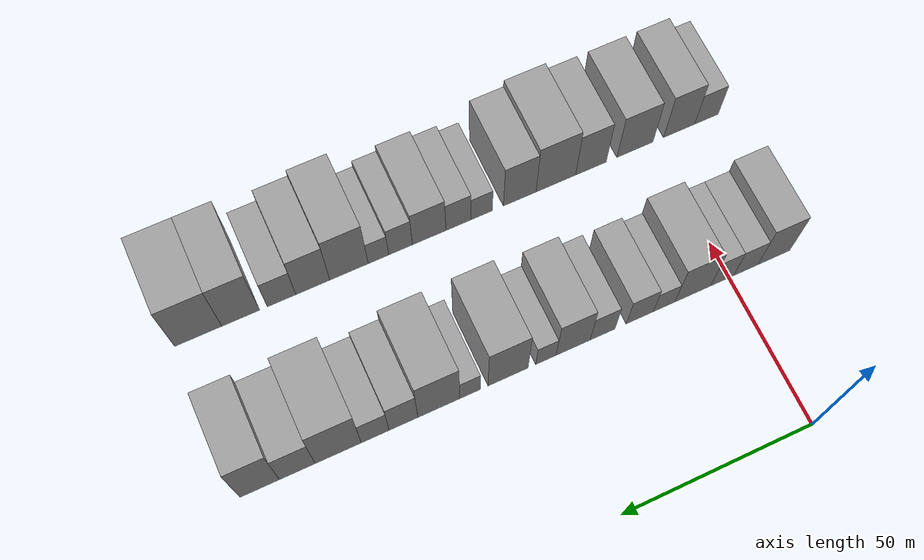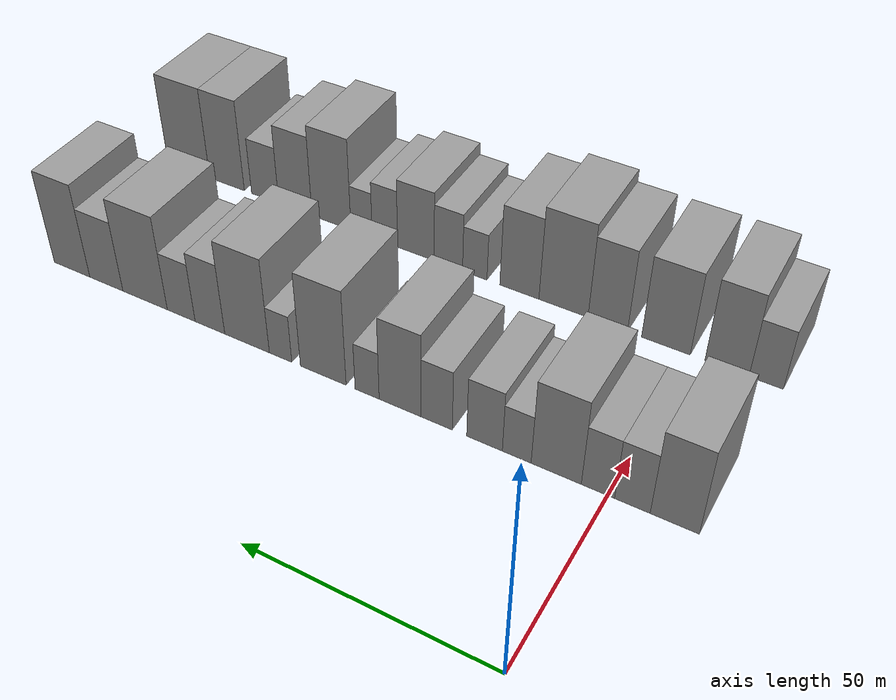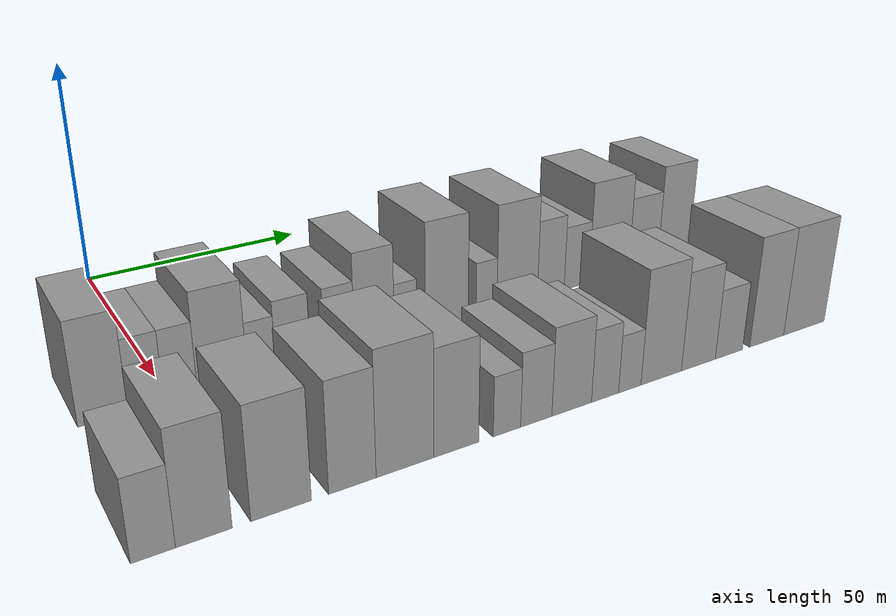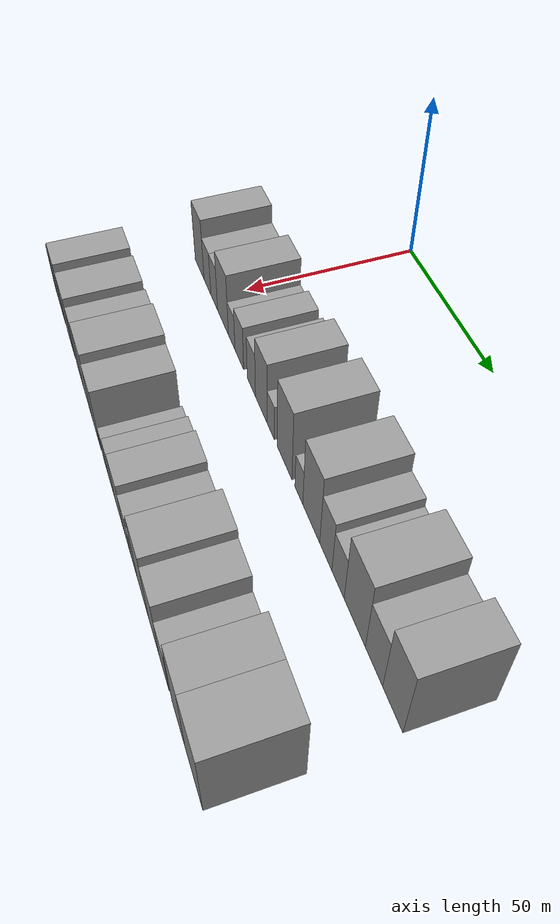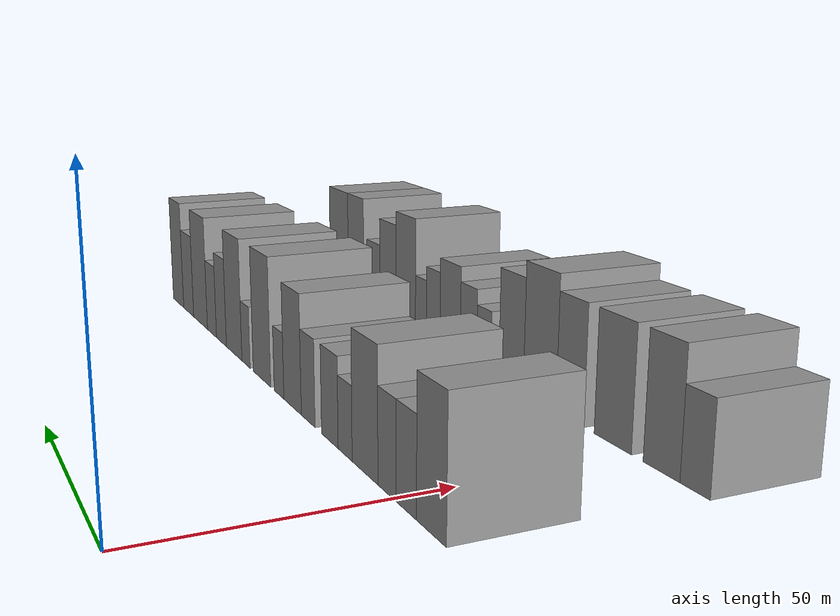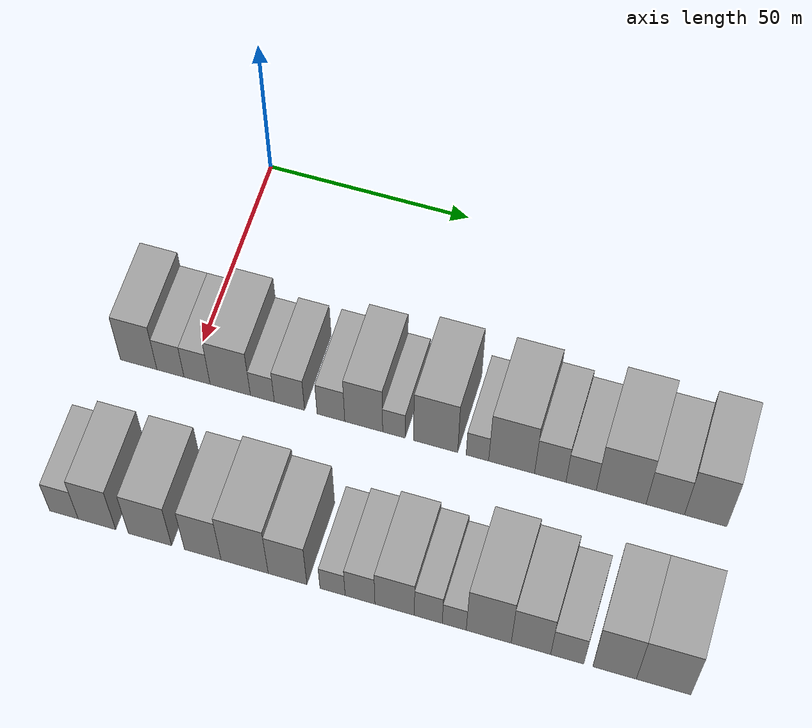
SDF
<sdf version="1.6">
 <world name="default">
  <model name="building_35">
   <static>1</static>
   <pose>50.0000 -12.3017 0 0.000000 0.000000 0.000000</pose>
   <link name="link">
    <pose>0 0 10.50 0 0 0</pose>
    <collision name="collision"><geometry><box><size>20.0000 8.9721 21.0000</size></box></geometry></collision>
    <visual name="visual">
     <cast_shadows>0</cast_shadows>
     <geometry><box><size>20.0000 8.9721 21.0000</size></box></geometry>
     <material>
      <script>
       <uri>model://grey_wall/materials/scripts</uri>
       <uri>model://grey_wall/materials/textures</uri>
       <name>vrc/grey_wall</name>
      </script>
     </material>
    </visual>
   </link>
  </model>
  <model name="building_36">
   <static>1</static>
   <pose>50.0000 -4.4959 0 0.000000 0.000000 0.000000</pose>
   <link name="link">
    <pose>0 0 7.50 0 0 0</pose>
    <collision name="collision"><geometry><box><size>20.0000 6.6396 15.0000</size></box></geometry></collision>
    <visual name="visual">
     <cast_shadows>0</cast_shadows>
     <geometry><box><size>20.0000 6.6396 15.0000</size></box></geometry>
     <material>
      <script>
       <uri>model://grey_wall/materials/scripts</uri>
       <uri>model://grey_wall/materials/textures</uri>
       <name>vrc/grey_wall</name>
      </script>
     </material>
    </visual>
   </link>
  </model>
  <model name="building_37">
   <static>1</static>
   <pose>50.0000 2.0016 0 0.000000 0.000000 0.000000</pose>
   <link name="link">
    <pose>0 0 7.50 0 0 0</pose>
    <collision name="collision"><geometry><box><size>20.0000 6.3552 15.0000</size></box></geometry></collision>
    <visual name="visual">
     <cast_shadows>0</cast_shadows>
     <geometry><box><size>20.0000 6.3552 15.0000</size></box></geometry>
     <material>
      <script>
       <uri>model://grey_wall/materials/scripts</uri>
       <uri>model://grey_wall/materials/textures</uri>
       <name>vrc/grey_wall</name>
      </script>
     </material>
    </visual>
   </link>
  </model>
  <model name="building_38">
   <static>1</static>
   <pose>50.0000 10.0908 0 0.000000 0.000000 0.000000</pose>
   <link name="link">
    <pose>0 0 10.50 0 0 0</pose>
    <collision name="collision"><geometry><box><size>20.0000 9.8233 21.0000</size></box></geometry></collision>
    <visual name="visual">
     <cast_shadows>0</cast_shadows>
     <geometry><box><size>20.0000 9.8233 21.0000</size></box></geometry>
     <material>
      <script>
       <uri>model://grey_wall/materials/scripts</uri>
       <uri>model://grey_wall/materials/textures</uri>
       <name>vrc/grey_wall</name>
      </script>
     </material>
    </visual>
   </link>
  </model>
  <model name="building_39">
   <static>1</static>
   <pose>50.0000 17.8913 0 0.000000 0.000000 0.000000</pose>
   <link name="link">
    <pose>0 0 6.00 0 0 0</pose>
    <collision name="collision"><geometry><box><size>20.0000 5.7777 12.0000</size></box></geometry></collision>
    <visual name="visual">
     <cast_shadows>0</cast_shadows>
     <geometry><box><size>20.0000 5.7777 12.0000</size></box></geometry>
     <material>
      <script>
       <uri>model://grey_wall/materials/scripts</uri>
       <uri>model://grey_wall/materials/textures</uri>
       <name>vrc/grey_wall</name>
      </script>
     </material>
    </visual>
   </link>
  </model>
  <model name="building_40">
   <static>1</static>
   <pose>50.0000 24.4286 0 0.000000 0.000000 0.000000</pose>
   <link name="link">
    <pose>0 0 7.50 0 0 0</pose>
    <collision name="collision"><geometry><box><size>20.0000 7.2970 15.0000</size></box></geometry></collision>
    <visual name="visual">
     <cast_shadows>0</cast_shadows>
     <geometry><box><size>20.0000 7.2970 15.0000</size></box></geometry>
     <material>
      <script>
       <uri>model://grey_wall/materials/scripts</uri>
       <uri>model://grey_wall/materials/textures</uri>
       <name>vrc/grey_wall</name>
      </script>
     </material>
    </visual>
   </link>
  </model>
  <model name="building_41">
   <static>1</static>
   <pose>50.0000 34.3968 0 0.000000 0.000000 0.000000</pose>
   <link name="link">
    <pose>0 0 7.50 0 0 0</pose>
    <collision name="collision"><geometry><box><size>20.0000 6.6393 15.0000</size></box></geometry></collision>
    <visual name="visual">
     <cast_shadows>0</cast_shadows>
     <geometry><box><size>20.0000 6.6393 15.0000</size></box></geometry>
     <material>
      <script>
       <uri>model://grey_wall/materials/scripts</uri>
       <uri>model://grey_wall/materials/textures</uri>
       <name>vrc/grey_wall</name>
      </script>
     </material>
    </visual>
   </link>
  </model>
  <model name="building_42">
   <static>1</static>
   <pose>50.0000 42.2371 0 0.000000 0.000000 0.000000</pose>
   <link name="link">
    <pose>0 0 10.50 0 0 0</pose>
    <collision name="collision"><geometry><box><size>20.0000 9.0413 21.0000</size></box></geometry></collision>
    <visual name="visual">
     <cast_shadows>0</cast_shadows>
     <geometry><box><size>20.0000 9.0413 21.0000</size></box></geometry>
     <material>
      <script>
       <uri>model://grey_wall/materials/scripts</uri>
       <uri>model://grey_wall/materials/textures</uri>
       <name>vrc/grey_wall</name>
      </script>
     </material>
    </visual>
   </link>
  </model>
  <model name="building_43">
   <static>1</static>
   <pose>50.0000 49.4258 0 0.000000 0.000000 0.000000</pose>
   <link name="link">
    <pose>0 0 6.00 0 0 0</pose>
    <collision name="collision"><geometry><box><size>20.0000 5.3360 12.0000</size></box></geometry></collision>
    <visual name="visual">
     <cast_shadows>0</cast_shadows>
     <geometry><box><size>20.0000 5.3360 12.0000</size></box></geometry>
     <material>
      <script>
       <uri>model://grey_wall/materials/scripts</uri>
       <uri>model://grey_wall/materials/textures</uri>
       <name>vrc/grey_wall</name>
      </script>
     </material>
    </visual>
   </link>
  </model>
  <model name="building_44">
   <static>1</static>
   <pose>50.0000 59.3077 0 0.000000 0.000000 0.000000</pose>
   <link name="link">
    <pose>0 0 12.00 0 0 0</pose>
    <collision name="collision"><geometry><box><size>20.0000 10.4279 24.0000</size></box></geometry></collision>
    <visual name="visual">
     <cast_shadows>0</cast_shadows>
     <geometry><box><size>20.0000 10.4279 24.0000</size></box></geometry>
     <material>
      <script>
       <uri>model://grey_wall/materials/scripts</uri>
       <uri>model://grey_wall/materials/textures</uri>
       <name>vrc/grey_wall</name>
      </script>
     </material>
    </visual>
   </link>
  </model>
  <model name="building_45">
   <static>1</static>
   <pose>50.0000 69.1614 0 0.000000 0.000000 0.000000</pose>
   <link name="link">
    <pose>0 0 6.00 0 0 0</pose>
    <collision name="collision"><geometry><box><size>20.0000 5.2795 12.0000</size></box></geometry></collision>
    <visual name="visual">
     <cast_shadows>0</cast_shadows>
     <geometry><box><size>20.0000 5.2795 12.0000</size></box></geometry>
     <material>
      <script>
       <uri>model://grey_wall/materials/scripts</uri>
       <uri>model://grey_wall/materials/textures</uri>
       <name>vrc/grey_wall</name>
      </script>
     </material>
    </visual>
   </link>
  </model>
  <model name="building_46">
   <static>1</static>
   <pose>50.0000 77.1668 0 0.000000 0.000000 0.000000</pose>
   <link name="link">
    <pose>0 0 12.00 0 0 0</pose>
    <collision name="collision"><geometry><box><size>20.0000 10.7313 24.0000</size></box></geometry></collision>
    <visual name="visual">
     <cast_shadows>0</cast_shadows>
     <geometry><box><size>20.0000 10.7313 24.0000</size></box></geometry>
     <material>
      <script>
       <uri>model://grey_wall/materials/scripts</uri>
       <uri>model://grey_wall/materials/textures</uri>
       <name>vrc/grey_wall</name>
      </script>
     </material>
    </visual>
   </link>
  </model>
  <model name="building_47">
   <static>1</static>
   <pose>50.0000 86.1929 0 0.000000 0.000000 0.000000</pose>
   <link name="link">
    <pose>0 0 9.00 0 0 0</pose>
    <collision name="collision"><geometry><box><size>20.0000 7.3210 18.0000</size></box></geometry></collision>
    <visual name="visual">
     <cast_shadows>0</cast_shadows>
     <geometry><box><size>20.0000 7.3210 18.0000</size></box></geometry>
     <material>
      <script>
       <uri>model://grey_wall/materials/scripts</uri>
       <uri>model://grey_wall/materials/textures</uri>
       <name>vrc/grey_wall</name>
      </script>
     </material>
    </visual>
   </link>
  </model>
  <model name="building_48">
   <static>1</static>
   <pose>50.0000 93.3614 0 0.000000 0.000000 0.000000</pose>
   <link name="link">
    <pose>0 0 7.50 0 0 0</pose>
    <collision name="collision"><geometry><box><size>20.0000 7.0160 15.0000</size></box></geometry></collision>
    <visual name="visual">
     <cast_shadows>0</cast_shadows>
     <geometry><box><size>20.0000 7.0160 15.0000</size></box></geometry>
     <material>
      <script>
       <uri>model://grey_wall/materials/scripts</uri>
       <uri>model://grey_wall/materials/textures</uri>
       <name>vrc/grey_wall</name>
      </script>
     </material>
    </visual>
   </link>
  </model>
  <model name="building_49">
   <static>1</static>
   <pose>50.0000 102.6188 0 0.000000 0.000000 0.000000</pose>
   <link name="link">
    <pose>0 0 12.00 0 0 0</pose>
    <collision name="collision"><geometry><box><size>20.0000 11.4986 24.0000</size></box></geometry></collision>
    <visual name="visual">
     <cast_shadows>0</cast_shadows>
     <geometry><box><size>20.0000 11.4986 24.0000</size></box></geometry>
     <material>
      <script>
       <uri>model://grey_wall/materials/scripts</uri>
       <uri>model://grey_wall/materials/textures</uri>
       <name>vrc/grey_wall</name>
      </script>
     </material>
    </visual>
   </link>
  </model>
  <model name="building_50">
   <static>1</static>
   <pose>50.0000 112.7771 0 0.000000 0.000000 0.000000</pose>
   <link name="link">
    <pose>0 0 9.00 0 0 0</pose>
    <collision name="collision"><geometry><box><size>20.0000 8.8180 18.0000</size></box></geometry></collision>
    <visual name="visual">
     <cast_shadows>0</cast_shadows>
     <geometry><box><size>20.0000 8.8180 18.0000</size></box></geometry>
     <material>
      <script>
       <uri>model://grey_wall/materials/scripts</uri>
       <uri>model://grey_wall/materials/textures</uri>
       <name>vrc/grey_wall</name>
      </script>
     </material>
    </visual>
   </link>
  </model>
  <model name="building_51">
   <static>1</static>
   <pose>50.0000 122.0197 0 0.000000 0.000000 0.000000</pose>
   <link name="link">
    <pose>0 0 12.00 0 0 0</pose>
    <collision name="collision"><geometry><box><size>20.0000 9.6673 24.0000</size></box></geometry></collision>
    <visual name="visual">
     <cast_shadows>0</cast_shadows>
     <geometry><box><size>20.0000 9.6673 24.0000</size></box></geometry>
     <material>
      <script>
       <uri>model://grey_wall/materials/scripts</uri>
       <uri>model://grey_wall/materials/textures</uri>
       <name>vrc/grey_wall</name>
      </script>
     </material>
    </visual>
   </link>
  </model>
  <model name="building_103">
   <static>1</static>
   <pose>90.0000 -15.3488 0 0.000000 0.000000 0.000000</pose>
   <link name="link">
    <pose>0 0 7.50 0 0 0</pose>
    <collision name="collision"><geometry><box><size>20.0000 6.7834 15.0000</size></box></geometry></collision>
    <visual name="visual">
     <cast_shadows>0</cast_shadows>
     <geometry><box><size>20.0000 6.7834 15.0000</size></box></geometry>
     <material>
      <script>
       <uri>model://grey_wall/materials/scripts</uri>
       <uri>model://grey_wall/materials/textures</uri>
       <name>vrc/grey_wall</name>
      </script>
     </material>
    </visual>
   </link>
  </model>
  <model name="building_104">
   <static>1</static>
   <pose>90.0000 -7.5104 0 0.000000 0.000000 0.000000</pose>
   <link name="link">
    <pose>0 0 10.50 0 0 0</pose>
    <collision name="collision"><geometry><box><size>20.0000 8.8935 21.0000</size></box></geometry></collision>
    <visual name="visual">
     <cast_shadows>0</cast_shadows>
     <geometry><box><size>20.0000 8.8935 21.0000</size></box></geometry>
     <material>
      <script>
       <uri>model://grey_wall/materials/scripts</uri>
       <uri>model://grey_wall/materials/textures</uri>
       <name>vrc/grey_wall</name>
      </script>
     </material>
    </visual>
   </link>
  </model>
  <model name="building_105">
   <static>1</static>
   <pose>90.0000 5.0416 0 0.000000 0.000000 0.000000</pose>
   <link name="link">
    <pose>0 0 10.50 0 0 0</pose>
    <collision name="collision"><geometry><box><size>20.0000 10.2106 21.0000</size></box></geometry></collision>
    <visual name="visual">
     <cast_shadows>0</cast_shadows>
     <geometry><box><size>20.0000 10.2106 21.0000</size></box></geometry>
     <material>
      <script>
       <uri>model://grey_wall/materials/scripts</uri>
       <uri>model://grey_wall/materials/textures</uri>
       <name>vrc/grey_wall</name>
      </script>
     </material>
    </visual>
   </link>
  </model>
  <model name="building_106">
   <static>1</static>
   <pose>90.0000 17.4295 0 0.000000 0.000000 0.000000</pose>
   <link name="link">
    <pose>0 0 10.50 0 0 0</pose>
    <collision name="collision"><geometry><box><size>20.0000 8.5651 21.0000</size></box></geometry></collision>
    <visual name="visual">
     <cast_shadows>0</cast_shadows>
     <geometry><box><size>20.0000 8.5651 21.0000</size></box></geometry>
     <material>
      <script>
       <uri>model://grey_wall/materials/scripts</uri>
       <uri>model://grey_wall/materials/textures</uri>
       <name>vrc/grey_wall</name>
      </script>
     </material>
    </visual>
   </link>
  </model>
  <model name="building_107">
   <static>1</static>
   <pose>90.0000 27.1963 0 0.000000 0.000000 0.000000</pose>
   <link name="link">
    <pose>0 0 12.00 0 0 0</pose>
    <collision name="collision"><geometry><box><size>20.0000 10.9686 24.0000</size></box></geometry></collision>
    <visual name="visual">
     <cast_shadows>0</cast_shadows>
     <geometry><box><size>20.0000 10.9686 24.0000</size></box></geometry>
     <material>
      <script>
       <uri>model://grey_wall/materials/scripts</uri>
       <uri>model://grey_wall/materials/textures</uri>
       <name>vrc/grey_wall</name>
      </script>
     </material>
    </visual>
   </link>
  </model>
  <model name="building_108">
   <static>1</static>
   <pose>90.0000 37.1631 0 0.000000 0.000000 0.000000</pose>
   <link name="link">
    <pose>0 0 10.50 0 0 0</pose>
    <collision name="collision"><geometry><box><size>20.0000 8.9649 21.0000</size></box></geometry></collision>
    <visual name="visual">
     <cast_shadows>0</cast_shadows>
     <geometry><box><size>20.0000 8.9649 21.0000</size></box></geometry>
     <material>
      <script>
       <uri>model://grey_wall/materials/scripts</uri>
       <uri>model://grey_wall/materials/textures</uri>
       <name>vrc/grey_wall</name>
      </script>
     </material>
    </visual>
   </link>
  </model>
  <model name="building_109">
   <static>1</static>
   <pose>90.0000 47.5309 0 0.000000 0.000000 0.000000</pose>
   <link name="link">
    <pose>0 0 6.00 0 0 0</pose>
    <collision name="collision"><geometry><box><size>20.0000 5.7707 12.0000</size></box></geometry></collision>
    <visual name="visual">
     <cast_shadows>0</cast_shadows>
     <geometry><box><size>20.0000 5.7707 12.0000</size></box></geometry>
     <material>
      <script>
       <uri>model://grey_wall/materials/scripts</uri>
       <uri>model://grey_wall/materials/textures</uri>
       <name>vrc/grey_wall</name>
      </script>
     </material>
    </visual>
   </link>
  </model>
  <model name="building_110">
   <static>1</static>
   <pose>90.0000 53.8296 0 0.000000 0.000000 0.000000</pose>
   <link name="link">
    <pose>0 0 7.50 0 0 0</pose>
    <collision name="collision"><geometry><box><size>20.0000 6.8266 15.0000</size></box></geometry></collision>
    <visual name="visual">
     <cast_shadows>0</cast_shadows>
     <geometry><box><size>20.0000 6.8266 15.0000</size></box></geometry>
     <material>
      <script>
       <uri>model://grey_wall/materials/scripts</uri>
       <uri>model://grey_wall/materials/textures</uri>
       <name>vrc/grey_wall</name>
      </script>
     </material>
    </visual>
   </link>
  </model>
  <model name="building_111">
   <static>1</static>
   <pose>90.0000 61.7289 0 0.000000 0.000000 0.000000</pose>
   <link name="link">
    <pose>0 0 9.00 0 0 0</pose>
    <collision name="collision"><geometry><box><size>20.0000 8.9719 18.0000</size></box></geometry></collision>
    <visual name="visual">
     <cast_shadows>0</cast_shadows>
     <geometry><box><size>20.0000 8.9719 18.0000</size></box></geometry>
     <material>
      <script>
       <uri>model://grey_wall/materials/scripts</uri>
       <uri>model://grey_wall/materials/textures</uri>
       <name>vrc/grey_wall</name>
      </script>
     </material>
    </visual>
   </link>
  </model>
  <model name="building_112">
   <static>1</static>
   <pose>90.0000 69.3833 0 0.000000 0.000000 0.000000</pose>
   <link name="link">
    <pose>0 0 7.50 0 0 0</pose>
    <collision name="collision"><geometry><box><size>20.0000 6.3369 15.0000</size></box></geometry></collision>
    <visual name="visual">
     <cast_shadows>0</cast_shadows>
     <geometry><box><size>20.0000 6.3369 15.0000</size></box></geometry>
     <material>
      <script>
       <uri>model://grey_wall/materials/scripts</uri>
       <uri>model://grey_wall/materials/textures</uri>
       <name>vrc/grey_wall</name>
      </script>
     </material>
    </visual>
   </link>
  </model>
  <model name="building_113">
   <static>1</static>
   <pose>90.0000 75.2606 0 0.000000 0.000000 0.000000</pose>
   <link name="link">
    <pose>0 0 6.00 0 0 0</pose>
    <collision name="collision"><geometry><box><size>20.0000 5.4178 12.0000</size></box></geometry></collision>
    <visual name="visual">
     <cast_shadows>0</cast_shadows>
     <geometry><box><size>20.0000 5.4178 12.0000</size></box></geometry>
     <material>
      <script>
       <uri>model://grey_wall/materials/scripts</uri>
       <uri>model://grey_wall/materials/textures</uri>
       <name>vrc/grey_wall</name>
      </script>
     </material>
    </visual>
   </link>
  </model>
  <model name="building_114">
   <static>1</static>
   <pose>90.0000 83.0299 0 0.000000 0.000000 0.000000</pose>
   <link name="link">
    <pose>0 0 12.00 0 0 0</pose>
    <collision name="collision"><geometry><box><size>20.0000 10.1208 24.0000</size></box></geometry></collision>
    <visual name="visual">
     <cast_shadows>0</cast_shadows>
     <geometry><box><size>20.0000 10.1208 24.0000</size></box></geometry>
     <material>
      <script>
       <uri>model://grey_wall/materials/scripts</uri>
       <uri>model://grey_wall/materials/textures</uri>
       <name>vrc/grey_wall</name>
      </script>
     </material>
    </visual>
   </link>
  </model>
  <model name="building_115">
   <static>1</static>
   <pose>90.0000 92.5170 0 0.000000 0.000000 0.000000</pose>
   <link name="link">
    <pose>0 0 10.50 0 0 0</pose>
    <collision name="collision"><geometry><box><size>20.0000 8.8534 21.0000</size></box></geometry></collision>
    <visual name="visual">
     <cast_shadows>0</cast_shadows>
     <geometry><box><size>20.0000 8.8534 21.0000</size></box></geometry>
     <material>
      <script>
       <uri>model://grey_wall/materials/scripts</uri>
       <uri>model://grey_wall/materials/textures</uri>
       <name>vrc/grey_wall</name>
      </script>
     </material>
    </visual>
   </link>
  </model>
  <model name="building_116">
   <static>1</static>
   <pose>90.0000 100.6322 0 0.000000 0.000000 0.000000</pose>
   <link name="link">
    <pose>0 0 7.50 0 0 0</pose>
    <collision name="collision"><geometry><box><size>20.0000 7.3769 15.0000</size></box></geometry></collision>
    <visual name="visual">
     <cast_shadows>0</cast_shadows>
     <geometry><box><size>20.0000 7.3769 15.0000</size></box></geometry>
     <material>
      <script>
       <uri>model://grey_wall/materials/scripts</uri>
       <uri>model://grey_wall/materials/textures</uri>
       <name>vrc/grey_wall</name>
      </script>
     </material>
    </visual>
   </link>
  </model>
  <model name="building_117">
   <static>1</static>
   <pose>90.0000 111.1436 0 0.000000 0.000000 0.000000</pose>
   <link name="link">
    <pose>0 0 12.00 0 0 0</pose>
    <collision name="collision"><geometry><box><size>20.0000 9.6459 24.0000</size></box></geometry></collision>
    <visual name="visual">
     <cast_shadows>0</cast_shadows>
     <geometry><box><size>20.0000 9.6459 24.0000</size></box></geometry>
     <material>
      <script>
       <uri>model://grey_wall/materials/scripts</uri>
       <uri>model://grey_wall/materials/textures</uri>
       <name>vrc/grey_wall</name>
      </script>
     </material>
    </visual>
   </link>
  </model>
  <model name="building_118">
   <static>1</static>
   <pose>90.0000 121.9644 0 0.000000 0.000000 0.000000</pose>
   <link name="link">
    <pose>0 0 12.00 0 0 0</pose>
    <collision name="collision"><geometry><box><size>20.0000 11.9956 24.0000</size></box></geometry></collision>
    <visual name="visual">
     <cast_shadows>0</cast_shadows>
     <geometry><box><size>20.0000 11.9956 24.0000</size></box></geometry>
     <material>
      <script>
       <uri>model://grey_wall/materials/scripts</uri>
       <uri>model://grey_wall/materials/textures</uri>
       <name>vrc/grey_wall</name>
      </script>
     </material>
    </visual>
   </link>
  </model>
 </world>
</sdf>
